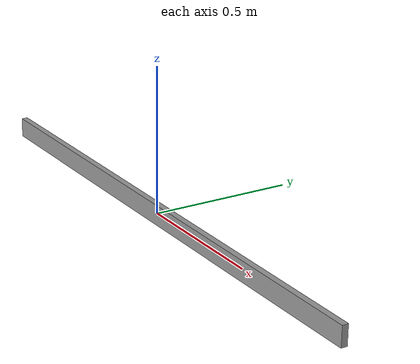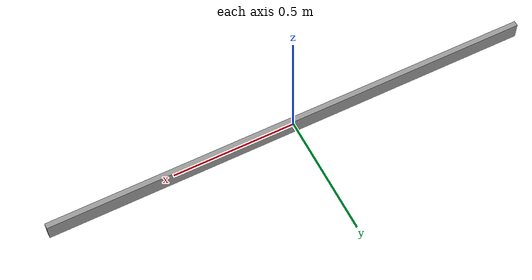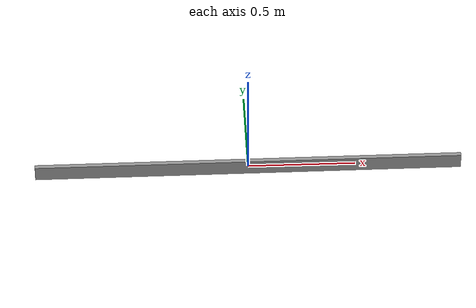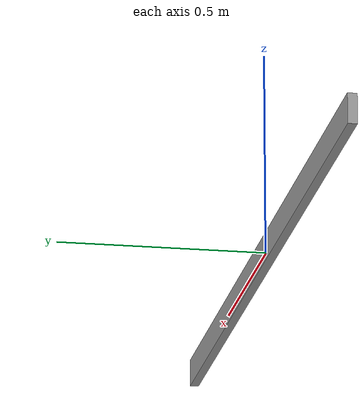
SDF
<?xml version="1.0"?>
<sdf version="1.5">
    <model name="wall_2m">
        <static>false</static>
        <link name="table_wall_2m">
            <collision name="collision">
                <geometry>
                    <box>
                        <size>2 0.022 0.070</size>
                    </box>
                </geometry>
                <surface>
                    <friction>
                        <ode>
                            <mu>100</mu>
                            <mu2>50</mu2>
                        </ode>
                    </friction>
                </surface>
            </collision>
            <visual name="visual">
                <geometry>
                    <box>
                        <size>2 0.022 0.070</size>
                    </box>
                </geometry>
                <material>
                    <script>
                        <uri>file://media/materials/scripts/gazebo.material</uri>
                        <name>Gazebo/Grey</name>
                    </script>
                </material>
            </visual>
        </link>
    </model>
</sdf>
